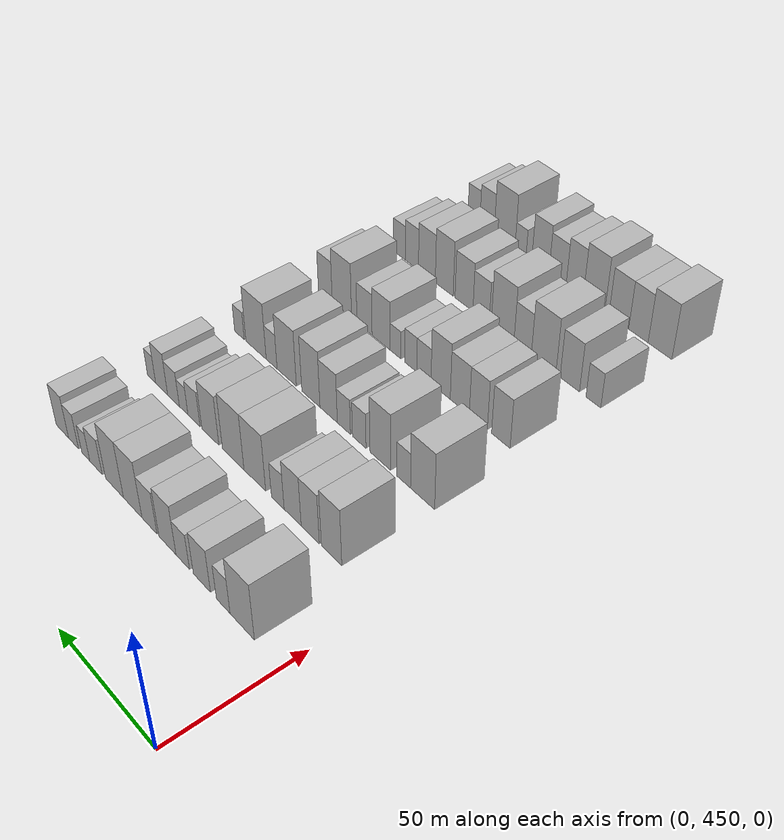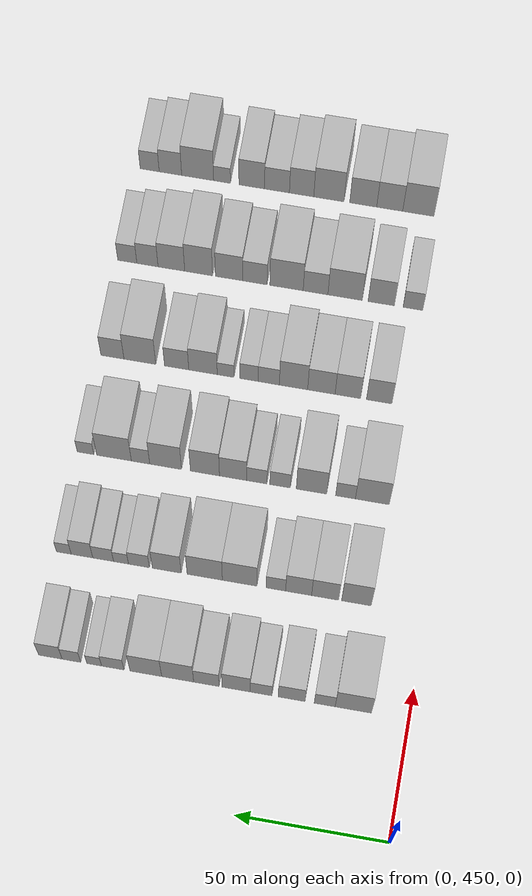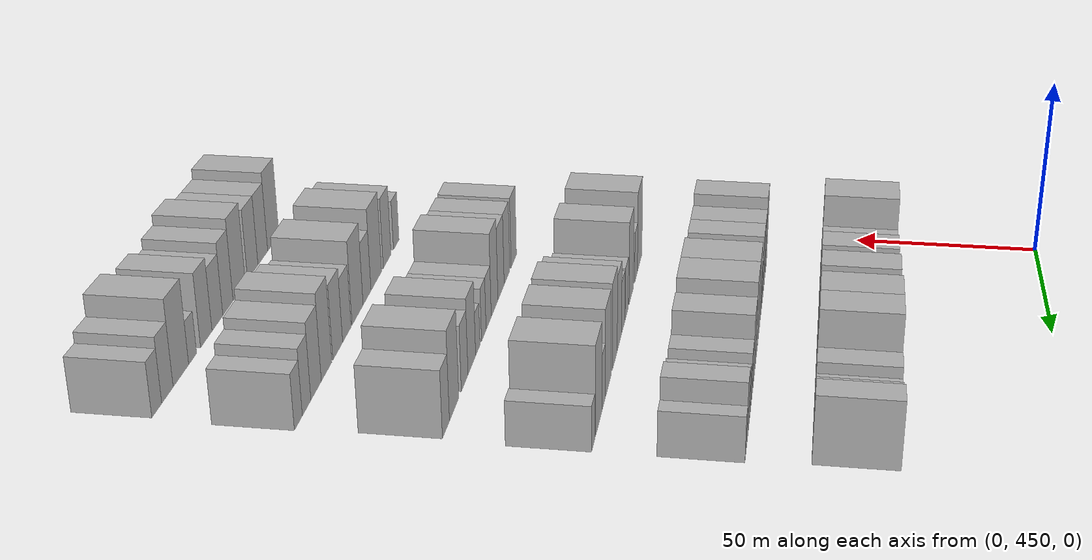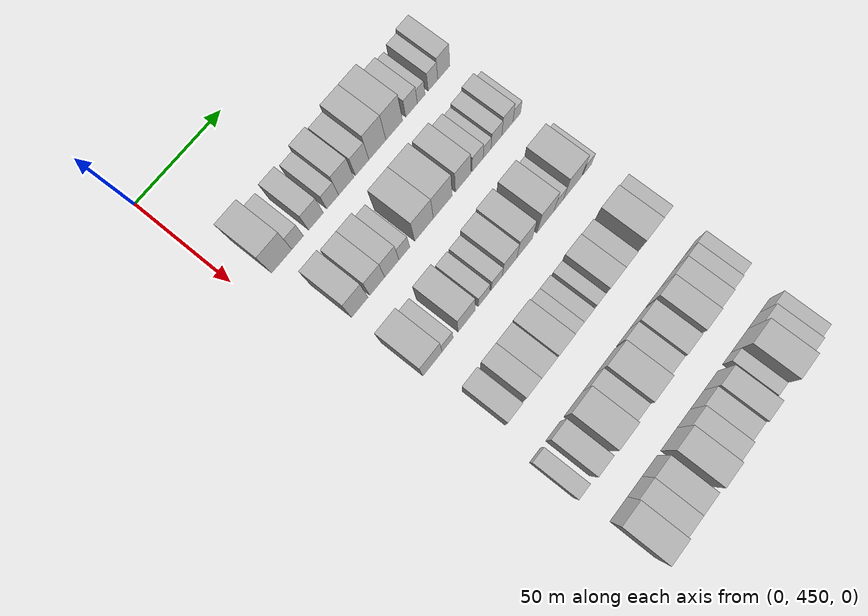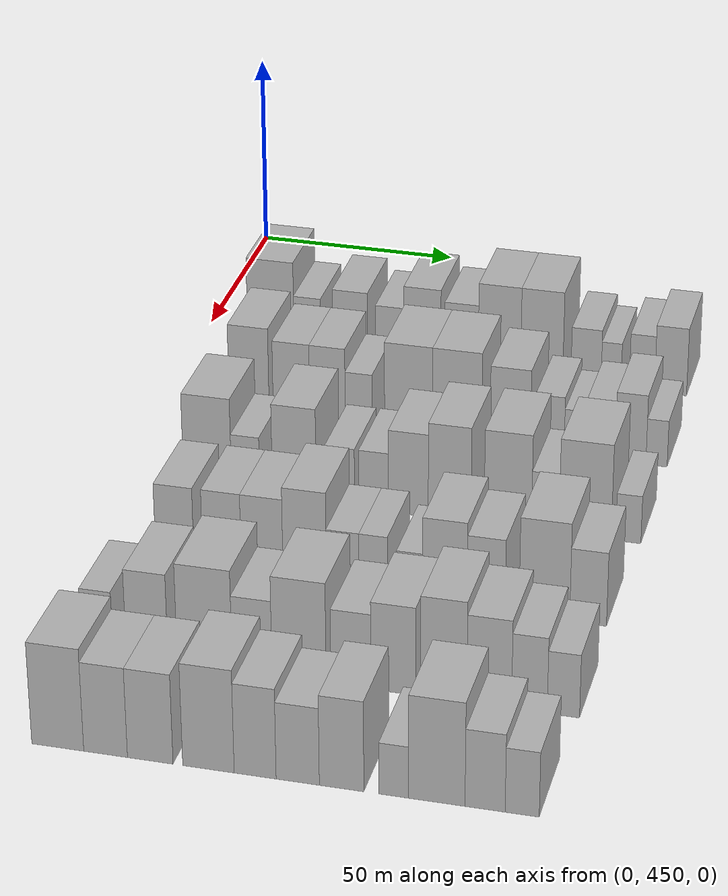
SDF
<sdf version="1.6">
 <world name="default">
  <model name="building_113">
   <static>1</static>
   <pose>50.0000 468.2517 0 0.000000 0.000000 0.000000</pose>
   <link name="link">
    <pose>0 0 12.00 0 0 0</pose>
    <collision name="collision"><geometry><box><size>20.0000 11.8288 24.0000</size></box></geometry></collision>
    <visual name="visual">
     <cast_shadows>0</cast_shadows>
     <geometry><box><size>20.0000 11.8288 24.0000</size></box></geometry>
     <material>
      <script>
       <uri>model://HANNAS_wall/materials/scripts</uri>
       <uri>model://HANNAS_wall/materials/textures</uri>
       <name>vrc/HANNAS_wall</name>
      </script>
     </material>
    </visual>
   </link>
  </model>
  <model name="building_114">
   <static>1</static>
   <pose>50.0000 477.5770 0 0.000000 0.000000 0.000000</pose>
   <link name="link">
    <pose>0 0 7.50 0 0 0</pose>
    <collision name="collision"><geometry><box><size>20.0000 6.8219 15.0000</size></box></geometry></collision>
    <visual name="visual">
     <cast_shadows>0</cast_shadows>
     <geometry><box><size>20.0000 6.8219 15.0000</size></box></geometry>
     <material>
      <script>
       <uri>model://HANNAS_wall/materials/scripts</uri>
       <uri>model://HANNAS_wall/materials/textures</uri>
       <name>vrc/HANNAS_wall</name>
      </script>
     </material>
    </visual>
   </link>
  </model>
  <model name="building_115">
   <static>1</static>
   <pose>50.0000 488.3977 0 0.000000 0.000000 0.000000</pose>
   <link name="link">
    <pose>0 0 9.00 0 0 0</pose>
    <collision name="collision"><geometry><box><size>20.0000 8.8195 18.0000</size></box></geometry></collision>
    <visual name="visual">
     <cast_shadows>0</cast_shadows>
     <geometry><box><size>20.0000 8.8195 18.0000</size></box></geometry>
     <material>
      <script>
       <uri>model://HANNAS_wall/materials/scripts</uri>
       <uri>model://HANNAS_wall/materials/textures</uri>
       <name>vrc/HANNAS_wall</name>
      </script>
     </material>
    </visual>
   </link>
  </model>
  <model name="building_116">
   <static>1</static>
   <pose>50.0000 498.3627 0 0.000000 0.000000 0.000000</pose>
   <link name="link">
    <pose>0 0 7.50 0 0 0</pose>
    <collision name="collision"><geometry><box><size>20.0000 7.1104 15.0000</size></box></geometry></collision>
    <visual name="visual">
     <cast_shadows>0</cast_shadows>
     <geometry><box><size>20.0000 7.1104 15.0000</size></box></geometry>
     <material>
      <script>
       <uri>model://HANNAS_wall/materials/scripts</uri>
       <uri>model://HANNAS_wall/materials/textures</uri>
       <name>vrc/HANNAS_wall</name>
      </script>
     </material>
    </visual>
   </link>
  </model>
  <model name="building_117">
   <static>1</static>
   <pose>50.0000 506.5333 0 0.000000 0.000000 0.000000</pose>
   <link name="link">
    <pose>0 0 10.50 0 0 0</pose>
    <collision name="collision"><geometry><box><size>20.0000 9.2308 21.0000</size></box></geometry></collision>
    <visual name="visual">
     <cast_shadows>0</cast_shadows>
     <geometry><box><size>20.0000 9.2308 21.0000</size></box></geometry>
     <material>
      <script>
       <uri>model://HANNAS_wall/materials/scripts</uri>
       <uri>model://HANNAS_wall/materials/textures</uri>
       <name>vrc/HANNAS_wall</name>
      </script>
     </material>
    </visual>
   </link>
  </model>
  <model name="building_118">
   <static>1</static>
   <pose>50.0000 516.3145 0 0.000000 0.000000 0.000000</pose>
   <link name="link">
    <pose>0 0 9.00 0 0 0</pose>
    <collision name="collision"><geometry><box><size>20.0000 8.3315 18.0000</size></box></geometry></collision>
    <visual name="visual">
     <cast_shadows>0</cast_shadows>
     <geometry><box><size>20.0000 8.3315 18.0000</size></box></geometry>
     <material>
      <script>
       <uri>model://HANNAS_wall/materials/scripts</uri>
       <uri>model://HANNAS_wall/materials/textures</uri>
       <name>vrc/HANNAS_wall</name>
      </script>
     </material>
    </visual>
   </link>
  </model>
  <model name="building_119">
   <static>1</static>
   <pose>50.0000 525.7347 0 0.000000 0.000000 0.000000</pose>
   <link name="link">
    <pose>0 0 12.00 0 0 0</pose>
    <collision name="collision"><geometry><box><size>20.0000 10.5090 24.0000</size></box></geometry></collision>
    <visual name="visual">
     <cast_shadows>0</cast_shadows>
     <geometry><box><size>20.0000 10.5090 24.0000</size></box></geometry>
     <material>
      <script>
       <uri>model://HANNAS_wall/materials/scripts</uri>
       <uri>model://HANNAS_wall/materials/textures</uri>
       <name>vrc/HANNAS_wall</name>
      </script>
     </material>
    </visual>
   </link>
  </model>
  <model name="building_120">
   <static>1</static>
   <pose>50.0000 536.1999 0 0.000000 0.000000 0.000000</pose>
   <link name="link">
    <pose>0 0 12.00 0 0 0</pose>
    <collision name="collision"><geometry><box><size>20.0000 10.4213 24.0000</size></box></geometry></collision>
    <visual name="visual">
     <cast_shadows>0</cast_shadows>
     <geometry><box><size>20.0000 10.4213 24.0000</size></box></geometry>
     <material>
      <script>
       <uri>model://HANNAS_wall/materials/scripts</uri>
       <uri>model://HANNAS_wall/materials/textures</uri>
       <name>vrc/HANNAS_wall</name>
      </script>
     </material>
    </visual>
   </link>
  </model>
  <model name="building_121">
   <static>1</static>
   <pose>50.0000 547.1112 0 0.000000 0.000000 0.000000</pose>
   <link name="link">
    <pose>0 0 7.50 0 0 0</pose>
    <collision name="collision"><geometry><box><size>20.0000 7.4013 15.0000</size></box></geometry></collision>
    <visual name="visual">
     <cast_shadows>0</cast_shadows>
     <geometry><box><size>20.0000 7.4013 15.0000</size></box></geometry>
     <material>
      <script>
       <uri>model://HANNAS_wall/materials/scripts</uri>
       <uri>model://HANNAS_wall/materials/textures</uri>
       <name>vrc/HANNAS_wall</name>
      </script>
     </material>
    </visual>
   </link>
  </model>
  <model name="building_122">
   <static>1</static>
   <pose>50.0000 553.2495 0 0.000000 0.000000 0.000000</pose>
   <link name="link">
    <pose>0 0 6.00 0 0 0</pose>
    <collision name="collision"><geometry><box><size>20.0000 4.8753 12.0000</size></box></geometry></collision>
    <visual name="visual">
     <cast_shadows>0</cast_shadows>
     <geometry><box><size>20.0000 4.8753 12.0000</size></box></geometry>
     <material>
      <script>
       <uri>model://HANNAS_wall/materials/scripts</uri>
       <uri>model://HANNAS_wall/materials/textures</uri>
       <name>vrc/HANNAS_wall</name>
      </script>
     </material>
    </visual>
   </link>
  </model>
  <model name="building_123">
   <static>1</static>
   <pose>50.0000 560.7667 0 0.000000 0.000000 0.000000</pose>
   <link name="link">
    <pose>0 0 7.50 0 0 0</pose>
    <collision name="collision"><geometry><box><size>20.0000 6.1592 15.0000</size></box></geometry></collision>
    <visual name="visual">
     <cast_shadows>0</cast_shadows>
     <geometry><box><size>20.0000 6.1592 15.0000</size></box></geometry>
     <material>
      <script>
       <uri>model://HANNAS_wall/materials/scripts</uri>
       <uri>model://HANNAS_wall/materials/textures</uri>
       <name>vrc/HANNAS_wall</name>
      </script>
     </material>
    </visual>
   </link>
  </model>
  <model name="building_124">
   <static>1</static>
   <pose>50.0000 567.7388 0 0.000000 0.000000 0.000000</pose>
   <link name="link">
    <pose>0 0 9.00 0 0 0</pose>
    <collision name="collision"><geometry><box><size>20.0000 7.7850 18.0000</size></box></geometry></collision>
    <visual name="visual">
     <cast_shadows>0</cast_shadows>
     <geometry><box><size>20.0000 7.7850 18.0000</size></box></geometry>
     <material>
      <script>
       <uri>model://HANNAS_wall/materials/scripts</uri>
       <uri>model://HANNAS_wall/materials/textures</uri>
       <name>vrc/HANNAS_wall</name>
      </script>
     </material>
    </visual>
   </link>
  </model>
  <model name="building_244">
   <static>1</static>
   <pose>85.0000 472.8939 0 0.000000 0.000000 0.000000</pose>
   <link name="link">
    <pose>0 0 12.00 0 0 0</pose>
    <collision name="collision"><geometry><box><size>20.0000 9.7969 24.0000</size></box></geometry></collision>
    <visual name="visual">
     <cast_shadows>0</cast_shadows>
     <geometry><box><size>20.0000 9.7969 24.0000</size></box></geometry>
     <material>
      <script>
       <uri>model://HANNAS_wall/materials/scripts</uri>
       <uri>model://HANNAS_wall/materials/textures</uri>
       <name>vrc/HANNAS_wall</name>
      </script>
     </material>
    </visual>
   </link>
  </model>
  <model name="building_245">
   <static>1</static>
   <pose>85.0000 483.2592 0 0.000000 0.000000 0.000000</pose>
   <link name="link">
    <pose>0 0 10.50 0 0 0</pose>
    <collision name="collision"><geometry><box><size>20.0000 8.9336 21.0000</size></box></geometry></collision>
    <visual name="visual">
     <cast_shadows>0</cast_shadows>
     <geometry><box><size>20.0000 8.9336 21.0000</size></box></geometry>
     <material>
      <script>
       <uri>model://HANNAS_wall/materials/scripts</uri>
       <uri>model://HANNAS_wall/materials/textures</uri>
       <name>vrc/HANNAS_wall</name>
      </script>
     </material>
    </visual>
   </link>
  </model>
  <model name="building_246">
   <static>1</static>
   <pose>85.0000 492.0335 0 0.000000 0.000000 0.000000</pose>
   <link name="link">
    <pose>0 0 10.50 0 0 0</pose>
    <collision name="collision"><geometry><box><size>20.0000 8.6151 21.0000</size></box></geometry></collision>
    <visual name="visual">
     <cast_shadows>0</cast_shadows>
     <geometry><box><size>20.0000 8.6151 21.0000</size></box></geometry>
     <material>
      <script>
       <uri>model://HANNAS_wall/materials/scripts</uri>
       <uri>model://HANNAS_wall/materials/textures</uri>
       <name>vrc/HANNAS_wall</name>
      </script>
     </material>
    </visual>
   </link>
  </model>
  <model name="building_247">
   <static>1</static>
   <pose>85.0000 499.6027 0 0.000000 0.000000 0.000000</pose>
   <link name="link">
    <pose>0 0 7.50 0 0 0</pose>
    <collision name="collision"><geometry><box><size>20.0000 6.5233 15.0000</size></box></geometry></collision>
    <visual name="visual">
     <cast_shadows>0</cast_shadows>
     <geometry><box><size>20.0000 6.5233 15.0000</size></box></geometry>
     <material>
      <script>
       <uri>model://HANNAS_wall/materials/scripts</uri>
       <uri>model://HANNAS_wall/materials/textures</uri>
       <name>vrc/HANNAS_wall</name>
      </script>
     </material>
    </visual>
   </link>
  </model>
  <model name="building_248">
   <static>1</static>
   <pose>85.0000 511.6254 0 0.000000 0.000000 0.000000</pose>
   <link name="link">
    <pose>0 0 12.00 0 0 0</pose>
    <collision name="collision"><geometry><box><size>20.0000 11.5221 24.0000</size></box></geometry></collision>
    <visual name="visual">
     <cast_shadows>0</cast_shadows>
     <geometry><box><size>20.0000 11.5221 24.0000</size></box></geometry>
     <material>
      <script>
       <uri>model://HANNAS_wall/materials/scripts</uri>
       <uri>model://HANNAS_wall/materials/textures</uri>
       <name>vrc/HANNAS_wall</name>
      </script>
     </material>
    </visual>
   </link>
  </model>
  <model name="building_249">
   <static>1</static>
   <pose>85.0000 523.2528 0 0.000000 0.000000 0.000000</pose>
   <link name="link">
    <pose>0 0 12.00 0 0 0</pose>
    <collision name="collision"><geometry><box><size>20.0000 11.7327 24.0000</size></box></geometry></collision>
    <visual name="visual">
     <cast_shadows>0</cast_shadows>
     <geometry><box><size>20.0000 11.7327 24.0000</size></box></geometry>
     <material>
      <script>
       <uri>model://HANNAS_wall/materials/scripts</uri>
       <uri>model://HANNAS_wall/materials/textures</uri>
       <name>vrc/HANNAS_wall</name>
      </script>
     </material>
    </visual>
   </link>
  </model>
  <model name="building_250">
   <static>1</static>
   <pose>85.0000 535.9151 0 0.000000 0.000000 0.000000</pose>
   <link name="link">
    <pose>0 0 10.50 0 0 0</pose>
    <collision name="collision"><geometry><box><size>20.0000 9.5918 21.0000</size></box></geometry></collision>
    <visual name="visual">
     <cast_shadows>0</cast_shadows>
     <geometry><box><size>20.0000 9.5918 21.0000</size></box></geometry>
     <material>
      <script>
       <uri>model://HANNAS_wall/materials/scripts</uri>
       <uri>model://HANNAS_wall/materials/textures</uri>
       <name>vrc/HANNAS_wall</name>
      </script>
     </material>
    </visual>
   </link>
  </model>
  <model name="building_251">
   <static>1</static>
   <pose>85.0000 545.2066 0 0.000000 0.000000 0.000000</pose>
   <link name="link">
    <pose>0 0 7.50 0 0 0</pose>
    <collision name="collision"><geometry><box><size>20.0000 6.9914 15.0000</size></box></geometry></collision>
    <visual name="visual">
     <cast_shadows>0</cast_shadows>
     <geometry><box><size>20.0000 6.9914 15.0000</size></box></geometry>
     <material>
      <script>
       <uri>model://HANNAS_wall/materials/scripts</uri>
       <uri>model://HANNAS_wall/materials/textures</uri>
       <name>vrc/HANNAS_wall</name>
      </script>
     </material>
    </visual>
   </link>
  </model>
  <model name="building_252">
   <static>1</static>
   <pose>85.0000 551.2076 0 0.000000 0.000000 0.000000</pose>
   <link name="link">
    <pose>0 0 6.00 0 0 0</pose>
    <collision name="collision"><geometry><box><size>20.0000 5.0105 12.0000</size></box></geometry></collision>
    <visual name="visual">
     <cast_shadows>0</cast_shadows>
     <geometry><box><size>20.0000 5.0105 12.0000</size></box></geometry>
     <material>
      <script>
       <uri>model://HANNAS_wall/materials/scripts</uri>
       <uri>model://HANNAS_wall/materials/textures</uri>
       <name>vrc/HANNAS_wall</name>
      </script>
     </material>
    </visual>
   </link>
  </model>
  <model name="building_253">
   <static>1</static>
   <pose>85.0000 557.1914 0 0.000000 0.000000 0.000000</pose>
   <link name="link">
    <pose>0 0 7.50 0 0 0</pose>
    <collision name="collision"><geometry><box><size>20.0000 6.9571 15.0000</size></box></geometry></collision>
    <visual name="visual">
     <cast_shadows>0</cast_shadows>
     <geometry><box><size>20.0000 6.9571 15.0000</size></box></geometry>
     <material>
      <script>
       <uri>model://HANNAS_wall/materials/scripts</uri>
       <uri>model://HANNAS_wall/materials/textures</uri>
       <name>vrc/HANNAS_wall</name>
      </script>
     </material>
    </visual>
   </link>
  </model>
  <model name="building_254">
   <static>1</static>
   <pose>85.0000 564.2882 0 0.000000 0.000000 0.000000</pose>
   <link name="link">
    <pose>0 0 9.00 0 0 0</pose>
    <collision name="collision"><geometry><box><size>20.0000 7.2365 18.0000</size></box></geometry></collision>
    <visual name="visual">
     <cast_shadows>0</cast_shadows>
     <geometry><box><size>20.0000 7.2365 18.0000</size></box></geometry>
     <material>
      <script>
       <uri>model://HANNAS_wall/materials/scripts</uri>
       <uri>model://HANNAS_wall/materials/textures</uri>
       <name>vrc/HANNAS_wall</name>
      </script>
     </material>
    </visual>
   </link>
  </model>
  <model name="building_255">
   <static>1</static>
   <pose>85.0000 570.3842 0 0.000000 0.000000 0.000000</pose>
   <link name="link">
    <pose>0 0 6.00 0 0 0</pose>
    <collision name="collision"><geometry><box><size>20.0000 4.9554 12.0000</size></box></geometry></collision>
    <visual name="visual">
     <cast_shadows>0</cast_shadows>
     <geometry><box><size>20.0000 4.9554 12.0000</size></box></geometry>
     <material>
      <script>
       <uri>model://HANNAS_wall/materials/scripts</uri>
       <uri>model://HANNAS_wall/materials/textures</uri>
       <name>vrc/HANNAS_wall</name>
      </script>
     </material>
    </visual>
   </link>
  </model>
  <model name="building_367">
   <static>1</static>
   <pose>120.0000 473.2083 0 0.000000 0.000000 0.000000</pose>
   <link name="link">
    <pose>0 0 12.00 0 0 0</pose>
    <collision name="collision"><geometry><box><size>20.0000 11.3515 24.0000</size></box></geometry></collision>
    <visual name="visual">
     <cast_shadows>0</cast_shadows>
     <geometry><box><size>20.0000 11.3515 24.0000</size></box></geometry>
     <material>
      <script>
       <uri>model://HANNAS_wall/materials/scripts</uri>
       <uri>model://HANNAS_wall/materials/textures</uri>
       <name>vrc/HANNAS_wall</name>
      </script>
     </material>
    </visual>
   </link>
  </model>
  <model name="building_368">
   <static>1</static>
   <pose>120.0000 482.2010 0 0.000000 0.000000 0.000000</pose>
   <link name="link">
    <pose>0 0 7.50 0 0 0</pose>
    <collision name="collision"><geometry><box><size>20.0000 6.6339 15.0000</size></box></geometry></collision>
    <visual name="visual">
     <cast_shadows>0</cast_shadows>
     <geometry><box><size>20.0000 6.6339 15.0000</size></box></geometry>
     <material>
      <script>
       <uri>model://HANNAS_wall/materials/scripts</uri>
       <uri>model://HANNAS_wall/materials/textures</uri>
       <name>vrc/HANNAS_wall</name>
      </script>
     </material>
    </visual>
   </link>
  </model>
  <model name="building_369">
   <static>1</static>
   <pose>120.0000 493.6407 0 0.000000 0.000000 0.000000</pose>
   <link name="link">
    <pose>0 0 12.00 0 0 0</pose>
    <collision name="collision"><geometry><box><size>20.0000 10.2455 24.0000</size></box></geometry></collision>
    <visual name="visual">
     <cast_shadows>0</cast_shadows>
     <geometry><box><size>20.0000 10.2455 24.0000</size></box></geometry>
     <material>
      <script>
       <uri>model://HANNAS_wall/materials/scripts</uri>
       <uri>model://HANNAS_wall/materials/textures</uri>
       <name>vrc/HANNAS_wall</name>
      </script>
     </material>
    </visual>
   </link>
  </model>
  <model name="building_370">
   <static>1</static>
   <pose>120.0000 504.2190 0 0.000000 0.000000 0.000000</pose>
   <link name="link">
    <pose>0 0 7.50 0 0 0</pose>
    <collision name="collision"><geometry><box><size>20.0000 6.9110 15.0000</size></box></geometry></collision>
    <visual name="visual">
     <cast_shadows>0</cast_shadows>
     <geometry><box><size>20.0000 6.9110 15.0000</size></box></geometry>
     <material>
      <script>
       <uri>model://HANNAS_wall/materials/scripts</uri>
       <uri>model://HANNAS_wall/materials/textures</uri>
       <name>vrc/HANNAS_wall</name>
      </script>
     </material>
    </visual>
   </link>
  </model>
  <model name="building_371">
   <static>1</static>
   <pose>120.0000 512.0822 0 0.000000 0.000000 0.000000</pose>
   <link name="link">
    <pose>0 0 7.50 0 0 0</pose>
    <collision name="collision"><geometry><box><size>20.0000 6.8153 15.0000</size></box></geometry></collision>
    <visual name="visual">
     <cast_shadows>0</cast_shadows>
     <geometry><box><size>20.0000 6.8153 15.0000</size></box></geometry>
     <material>
      <script>
       <uri>model://HANNAS_wall/materials/scripts</uri>
       <uri>model://HANNAS_wall/materials/textures</uri>
       <name>vrc/HANNAS_wall</name>
      </script>
     </material>
    </visual>
   </link>
  </model>
  <model name="building_372">
   <static>1</static>
   <pose>120.0000 520.0840 0 0.000000 0.000000 0.000000</pose>
   <link name="link">
    <pose>0 0 10.50 0 0 0</pose>
    <collision name="collision"><geometry><box><size>20.0000 9.1883 21.0000</size></box></geometry></collision>
    <visual name="visual">
     <cast_shadows>0</cast_shadows>
     <geometry><box><size>20.0000 9.1883 21.0000</size></box></geometry>
     <material>
      <script>
       <uri>model://HANNAS_wall/materials/scripts</uri>
       <uri>model://HANNAS_wall/materials/textures</uri>
       <name>vrc/HANNAS_wall</name>
      </script>
     </material>
    </visual>
   </link>
  </model>
  <model name="building_373">
   <static>1</static>
   <pose>120.0000 529.5847 0 0.000000 0.000000 0.000000</pose>
   <link name="link">
    <pose>0 0 12.00 0 0 0</pose>
    <collision name="collision"><geometry><box><size>20.0000 9.8130 24.0000</size></box></geometry></collision>
    <visual name="visual">
     <cast_shadows>0</cast_shadows>
     <geometry><box><size>20.0000 9.8130 24.0000</size></box></geometry>
     <material>
      <script>
       <uri>model://HANNAS_wall/materials/scripts</uri>
       <uri>model://HANNAS_wall/materials/textures</uri>
       <name>vrc/HANNAS_wall</name>
      </script>
     </material>
    </visual>
   </link>
  </model>
  <model name="building_374">
   <static>1</static>
   <pose>120.0000 542.8760 0 0.000000 0.000000 0.000000</pose>
   <link name="link">
    <pose>0 0 12.00 0 0 0</pose>
    <collision name="collision"><geometry><box><size>20.0000 10.7697 24.0000</size></box></geometry></collision>
    <visual name="visual">
     <cast_shadows>0</cast_shadows>
     <geometry><box><size>20.0000 10.7697 24.0000</size></box></geometry>
     <material>
      <script>
       <uri>model://HANNAS_wall/materials/scripts</uri>
       <uri>model://HANNAS_wall/materials/textures</uri>
       <name>vrc/HANNAS_wall</name>
      </script>
     </material>
    </visual>
   </link>
  </model>
  <model name="building_375">
   <static>1</static>
   <pose>120.0000 551.3742 0 0.000000 0.000000 0.000000</pose>
   <link name="link">
    <pose>0 0 7.50 0 0 0</pose>
    <collision name="collision"><geometry><box><size>20.0000 6.2267 15.0000</size></box></geometry></collision>
    <visual name="visual">
     <cast_shadows>0</cast_shadows>
     <geometry><box><size>20.0000 6.2267 15.0000</size></box></geometry>
     <material>
      <script>
       <uri>model://HANNAS_wall/materials/scripts</uri>
       <uri>model://HANNAS_wall/materials/textures</uri>
       <name>vrc/HANNAS_wall</name>
      </script>
     </material>
    </visual>
   </link>
  </model>
  <model name="building_376">
   <static>1</static>
   <pose>120.0000 560.3779 0 0.000000 0.000000 0.000000</pose>
   <link name="link">
    <pose>0 0 12.00 0 0 0</pose>
    <collision name="collision"><geometry><box><size>20.0000 11.7807 24.0000</size></box></geometry></collision>
    <visual name="visual">
     <cast_shadows>0</cast_shadows>
     <geometry><box><size>20.0000 11.7807 24.0000</size></box></geometry>
     <material>
      <script>
       <uri>model://HANNAS_wall/materials/scripts</uri>
       <uri>model://HANNAS_wall/materials/textures</uri>
       <name>vrc/HANNAS_wall</name>
      </script>
     </material>
    </visual>
   </link>
  </model>
  <model name="building_377">
   <static>1</static>
   <pose>120.0000 570.1002 0 0.000000 0.000000 0.000000</pose>
   <link name="link">
    <pose>0 0 6.00 0 0 0</pose>
    <collision name="collision"><geometry><box><size>20.0000 5.6638 12.0000</size></box></geometry></collision>
    <visual name="visual">
     <cast_shadows>0</cast_shadows>
     <geometry><box><size>20.0000 5.6638 12.0000</size></box></geometry>
     <material>
      <script>
       <uri>model://HANNAS_wall/materials/scripts</uri>
       <uri>model://HANNAS_wall/materials/textures</uri>
       <name>vrc/HANNAS_wall</name>
      </script>
     </material>
    </visual>
   </link>
  </model>
  <model name="building_492">
   <static>1</static>
   <pose>155.0000 476.4564 0 0.000000 0.000000 0.000000</pose>
   <link name="link">
    <pose>0 0 10.50 0 0 0</pose>
    <collision name="collision"><geometry><box><size>20.0000 8.6724 21.0000</size></box></geometry></collision>
    <visual name="visual">
     <cast_shadows>0</cast_shadows>
     <geometry><box><size>20.0000 8.6724 21.0000</size></box></geometry>
     <material>
      <script>
       <uri>model://HANNAS_wall/materials/scripts</uri>
       <uri>model://HANNAS_wall/materials/textures</uri>
       <name>vrc/HANNAS_wall</name>
      </script>
     </material>
    </visual>
   </link>
  </model>
  <model name="building_493">
   <static>1</static>
   <pose>155.0000 487.1316 0 0.000000 0.000000 0.000000</pose>
   <link name="link">
    <pose>0 0 10.50 0 0 0</pose>
    <collision name="collision"><geometry><box><size>20.0000 8.6781 21.0000</size></box></geometry></collision>
    <visual name="visual">
     <cast_shadows>0</cast_shadows>
     <geometry><box><size>20.0000 8.6781 21.0000</size></box></geometry>
     <material>
      <script>
       <uri>model://HANNAS_wall/materials/scripts</uri>
       <uri>model://HANNAS_wall/materials/textures</uri>
       <name>vrc/HANNAS_wall</name>
      </script>
     </material>
    </visual>
   </link>
  </model>
  <model name="building_494">
   <static>1</static>
   <pose>155.0000 496.1494 0 0.000000 0.000000 0.000000</pose>
   <link name="link">
    <pose>0 0 10.50 0 0 0</pose>
    <collision name="collision"><geometry><box><size>20.0000 9.3574 21.0000</size></box></geometry></collision>
    <visual name="visual">
     <cast_shadows>0</cast_shadows>
     <geometry><box><size>20.0000 9.3574 21.0000</size></box></geometry>
     <material>
      <script>
       <uri>model://HANNAS_wall/materials/scripts</uri>
       <uri>model://HANNAS_wall/materials/textures</uri>
       <name>vrc/HANNAS_wall</name>
      </script>
     </material>
    </visual>
   </link>
  </model>
  <model name="building_495">
   <static>1</static>
   <pose>155.0000 505.6668 0 0.000000 0.000000 0.000000</pose>
   <link name="link">
    <pose>0 0 12.00 0 0 0</pose>
    <collision name="collision"><geometry><box><size>20.0000 9.6774 24.0000</size></box></geometry></collision>
    <visual name="visual">
     <cast_shadows>0</cast_shadows>
     <geometry><box><size>20.0000 9.6774 24.0000</size></box></geometry>
     <material>
      <script>
       <uri>model://HANNAS_wall/materials/scripts</uri>
       <uri>model://HANNAS_wall/materials/textures</uri>
       <name>vrc/HANNAS_wall</name>
      </script>
     </material>
    </visual>
   </link>
  </model>
  <model name="building_496">
   <static>1</static>
   <pose>155.0000 514.1166 0 0.000000 0.000000 0.000000</pose>
   <link name="link">
    <pose>0 0 7.50 0 0 0</pose>
    <collision name="collision"><geometry><box><size>20.0000 7.2220 15.0000</size></box></geometry></collision>
    <visual name="visual">
     <cast_shadows>0</cast_shadows>
     <geometry><box><size>20.0000 7.2220 15.0000</size></box></geometry>
     <material>
      <script>
       <uri>model://HANNAS_wall/materials/scripts</uri>
       <uri>model://HANNAS_wall/materials/textures</uri>
       <name>vrc/HANNAS_wall</name>
      </script>
     </material>
    </visual>
   </link>
  </model>
  <model name="building_497">
   <static>1</static>
   <pose>155.0000 520.8746 0 0.000000 0.000000 0.000000</pose>
   <link name="link">
    <pose>0 0 7.50 0 0 0</pose>
    <collision name="collision"><geometry><box><size>20.0000 6.2940 15.0000</size></box></geometry></collision>
    <visual name="visual">
     <cast_shadows>0</cast_shadows>
     <geometry><box><size>20.0000 6.2940 15.0000</size></box></geometry>
     <material>
      <script>
       <uri>model://HANNAS_wall/materials/scripts</uri>
       <uri>model://HANNAS_wall/materials/textures</uri>
       <name>vrc/HANNAS_wall</name>
      </script>
     </material>
    </visual>
   </link>
  </model>
  <model name="building_498">
   <static>1</static>
   <pose>155.0000 528.8949 0 0.000000 0.000000 0.000000</pose>
   <link name="link">
    <pose>0 0 6.00 0 0 0</pose>
    <collision name="collision"><geometry><box><size>20.0000 5.7466 12.0000</size></box></geometry></collision>
    <visual name="visual">
     <cast_shadows>0</cast_shadows>
     <geometry><box><size>20.0000 5.7466 12.0000</size></box></geometry>
     <material>
      <script>
       <uri>model://HANNAS_wall/materials/scripts</uri>
       <uri>model://HANNAS_wall/materials/textures</uri>
       <name>vrc/HANNAS_wall</name>
      </script>
     </material>
    </visual>
   </link>
  </model>
  <model name="building_499">
   <static>1</static>
   <pose>155.0000 536.6501 0 0.000000 0.000000 0.000000</pose>
   <link name="link">
    <pose>0 0 10.50 0 0 0</pose>
    <collision name="collision"><geometry><box><size>20.0000 9.7638 21.0000</size></box></geometry></collision>
    <visual name="visual">
     <cast_shadows>0</cast_shadows>
     <geometry><box><size>20.0000 9.7638 21.0000</size></box></geometry>
     <material>
      <script>
       <uri>model://HANNAS_wall/materials/scripts</uri>
       <uri>model://HANNAS_wall/materials/textures</uri>
       <name>vrc/HANNAS_wall</name>
      </script>
     </material>
    </visual>
   </link>
  </model>
  <model name="building_500">
   <static>1</static>
   <pose>155.0000 545.6896 0 0.000000 0.000000 0.000000</pose>
   <link name="link">
    <pose>0 0 9.00 0 0 0</pose>
    <collision name="collision"><geometry><box><size>20.0000 8.3153 18.0000</size></box></geometry></collision>
    <visual name="visual">
     <cast_shadows>0</cast_shadows>
     <geometry><box><size>20.0000 8.3153 18.0000</size></box></geometry>
     <material>
      <script>
       <uri>model://HANNAS_wall/materials/scripts</uri>
       <uri>model://HANNAS_wall/materials/textures</uri>
       <name>vrc/HANNAS_wall</name>
      </script>
     </material>
    </visual>
   </link>
  </model>
  <model name="building_501">
   <static>1</static>
   <pose>155.0000 558.3270 0 0.000000 0.000000 0.000000</pose>
   <link name="link">
    <pose>0 0 12.00 0 0 0</pose>
    <collision name="collision"><geometry><box><size>20.0000 10.9594 24.0000</size></box></geometry></collision>
    <visual name="visual">
     <cast_shadows>0</cast_shadows>
     <geometry><box><size>20.0000 10.9594 24.0000</size></box></geometry>
     <material>
      <script>
       <uri>model://HANNAS_wall/materials/scripts</uri>
       <uri>model://HANNAS_wall/materials/textures</uri>
       <name>vrc/HANNAS_wall</name>
      </script>
     </material>
    </visual>
   </link>
  </model>
  <model name="building_502">
   <static>1</static>
   <pose>155.0000 567.7808 0 0.000000 0.000000 0.000000</pose>
   <link name="link">
    <pose>0 0 9.00 0 0 0</pose>
    <collision name="collision"><geometry><box><size>20.0000 7.9482 18.0000</size></box></geometry></collision>
    <visual name="visual">
     <cast_shadows>0</cast_shadows>
     <geometry><box><size>20.0000 7.9482 18.0000</size></box></geometry>
     <material>
      <script>
       <uri>model://HANNAS_wall/materials/scripts</uri>
       <uri>model://HANNAS_wall/materials/textures</uri>
       <name>vrc/HANNAS_wall</name>
      </script>
     </material>
    </visual>
   </link>
  </model>
  <model name="building_617">
   <static>1</static>
   <pose>190.0000 470.3779 0 0.000000 0.000000 0.000000</pose>
   <link name="link">
    <pose>0 0 7.50 0 0 0</pose>
    <collision name="collision"><geometry><box><size>20.0000 6.7582 15.0000</size></box></geometry></collision>
    <visual name="visual">
     <cast_shadows>0</cast_shadows>
     <geometry><box><size>20.0000 6.7582 15.0000</size></box></geometry>
     <material>
      <script>
       <uri>model://HANNAS_wall/materials/scripts</uri>
       <uri>model://HANNAS_wall/materials/textures</uri>
       <name>vrc/HANNAS_wall</name>
      </script>
     </material>
    </visual>
   </link>
  </model>
  <model name="building_618">
   <static>1</static>
   <pose>190.0000 481.3050 0 0.000000 0.000000 0.000000</pose>
   <link name="link">
    <pose>0 0 10.50 0 0 0</pose>
    <collision name="collision"><geometry><box><size>20.0000 9.0960 21.0000</size></box></geometry></collision>
    <visual name="visual">
     <cast_shadows>0</cast_shadows>
     <geometry><box><size>20.0000 9.0960 21.0000</size></box></geometry>
     <material>
      <script>
       <uri>model://HANNAS_wall/materials/scripts</uri>
       <uri>model://HANNAS_wall/materials/textures</uri>
       <name>vrc/HANNAS_wall</name>
      </script>
     </material>
    </visual>
   </link>
  </model>
  <model name="building_619">
   <static>1</static>
   <pose>190.0000 493.7862 0 0.000000 0.000000 0.000000</pose>
   <link name="link">
    <pose>0 0 12.00 0 0 0</pose>
    <collision name="collision"><geometry><box><size>20.0000 11.8664 24.0000</size></box></geometry></collision>
    <visual name="visual">
     <cast_shadows>0</cast_shadows>
     <geometry><box><size>20.0000 11.8664 24.0000</size></box></geometry>
     <material>
      <script>
       <uri>model://HANNAS_wall/materials/scripts</uri>
       <uri>model://HANNAS_wall/materials/textures</uri>
       <name>vrc/HANNAS_wall</name>
      </script>
     </material>
    </visual>
   </link>
  </model>
  <model name="building_620">
   <static>1</static>
   <pose>190.0000 503.9983 0 0.000000 0.000000 0.000000</pose>
   <link name="link">
    <pose>0 0 9.00 0 0 0</pose>
    <collision name="collision"><geometry><box><size>20.0000 8.5578 18.0000</size></box></geometry></collision>
    <visual name="visual">
     <cast_shadows>0</cast_shadows>
     <geometry><box><size>20.0000 8.5578 18.0000</size></box></geometry>
     <material>
      <script>
       <uri>model://HANNAS_wall/materials/scripts</uri>
       <uri>model://HANNAS_wall/materials/textures</uri>
       <name>vrc/HANNAS_wall</name>
      </script>
     </material>
    </visual>
   </link>
  </model>
  <model name="building_621">
   <static>1</static>
   <pose>190.0000 514.0446 0 0.000000 0.000000 0.000000</pose>
   <link name="link">
    <pose>0 0 12.00 0 0 0</pose>
    <collision name="collision"><geometry><box><size>20.0000 11.5349 24.0000</size></box></geometry></collision>
    <visual name="visual">
     <cast_shadows>0</cast_shadows>
     <geometry><box><size>20.0000 11.5349 24.0000</size></box></geometry>
     <material>
      <script>
       <uri>model://HANNAS_wall/materials/scripts</uri>
       <uri>model://HANNAS_wall/materials/textures</uri>
       <name>vrc/HANNAS_wall</name>
      </script>
     </material>
    </visual>
   </link>
  </model>
  <model name="building_622">
   <static>1</static>
   <pose>190.0000 525.0414 0 0.000000 0.000000 0.000000</pose>
   <link name="link">
    <pose>0 0 9.00 0 0 0</pose>
    <collision name="collision"><geometry><box><size>20.0000 8.4587 18.0000</size></box></geometry></collision>
    <visual name="visual">
     <cast_shadows>0</cast_shadows>
     <geometry><box><size>20.0000 8.4587 18.0000</size></box></geometry>
     <material>
      <script>
       <uri>model://HANNAS_wall/materials/scripts</uri>
       <uri>model://HANNAS_wall/materials/textures</uri>
       <name>vrc/HANNAS_wall</name>
      </script>
     </material>
    </visual>
   </link>
  </model>
  <model name="building_623">
   <static>1</static>
   <pose>190.0000 534.0036 0 0.000000 0.000000 0.000000</pose>
   <link name="link">
    <pose>0 0 10.50 0 0 0</pose>
    <collision name="collision"><geometry><box><size>20.0000 9.4656 21.0000</size></box></geometry></collision>
    <visual name="visual">
     <cast_shadows>0</cast_shadows>
     <geometry><box><size>20.0000 9.4656 21.0000</size></box></geometry>
     <material>
      <script>
       <uri>model://HANNAS_wall/materials/scripts</uri>
       <uri>model://HANNAS_wall/materials/textures</uri>
       <name>vrc/HANNAS_wall</name>
      </script>
     </material>
    </visual>
   </link>
  </model>
  <model name="building_624">
   <static>1</static>
   <pose>190.0000 544.5774 0 0.000000 0.000000 0.000000</pose>
   <link name="link">
    <pose>0 0 12.00 0 0 0</pose>
    <collision name="collision"><geometry><box><size>20.0000 9.6820 24.0000</size></box></geometry></collision>
    <visual name="visual">
     <cast_shadows>0</cast_shadows>
     <geometry><box><size>20.0000 9.6820 24.0000</size></box></geometry>
     <material>
      <script>
       <uri>model://HANNAS_wall/materials/scripts</uri>
       <uri>model://HANNAS_wall/materials/textures</uri>
       <name>vrc/HANNAS_wall</name>
      </script>
     </material>
    </visual>
   </link>
  </model>
  <model name="building_625">
   <static>1</static>
   <pose>190.0000 554.0684 0 0.000000 0.000000 0.000000</pose>
   <link name="link">
    <pose>0 0 10.50 0 0 0</pose>
    <collision name="collision"><geometry><box><size>20.0000 9.3001 21.0000</size></box></geometry></collision>
    <visual name="visual">
     <cast_shadows>0</cast_shadows>
     <geometry><box><size>20.0000 9.3001 21.0000</size></box></geometry>
     <material>
      <script>
       <uri>model://HANNAS_wall/materials/scripts</uri>
       <uri>model://HANNAS_wall/materials/textures</uri>
       <name>vrc/HANNAS_wall</name>
      </script>
     </material>
    </visual>
   </link>
  </model>
  <model name="building_626">
   <static>1</static>
   <pose>190.0000 562.4048 0 0.000000 0.000000 0.000000</pose>
   <link name="link">
    <pose>0 0 9.00 0 0 0</pose>
    <collision name="collision"><geometry><box><size>20.0000 7.3726 18.0000</size></box></geometry></collision>
    <visual name="visual">
     <cast_shadows>0</cast_shadows>
     <geometry><box><size>20.0000 7.3726 18.0000</size></box></geometry>
     <material>
      <script>
       <uri>model://HANNAS_wall/materials/scripts</uri>
       <uri>model://HANNAS_wall/materials/textures</uri>
       <name>vrc/HANNAS_wall</name>
      </script>
     </material>
    </visual>
   </link>
  </model>
  <model name="building_627">
   <static>1</static>
   <pose>190.0000 569.4272 0 0.000000 0.000000 0.000000</pose>
   <link name="link">
    <pose>0 0 7.50 0 0 0</pose>
    <collision name="collision"><geometry><box><size>20.0000 6.6723 15.0000</size></box></geometry></collision>
    <visual name="visual">
     <cast_shadows>0</cast_shadows>
     <geometry><box><size>20.0000 6.6723 15.0000</size></box></geometry>
     <material>
      <script>
       <uri>model://HANNAS_wall/materials/scripts</uri>
       <uri>model://HANNAS_wall/materials/textures</uri>
       <name>vrc/HANNAS_wall</name>
      </script>
     </material>
    </visual>
   </link>
  </model>
  <model name="building_744">
   <static>1</static>
   <pose>225.0000 473.8791 0 0.000000 0.000000 0.000000</pose>
   <link name="link">
    <pose>0 0 12.00 0 0 0</pose>
    <collision name="collision"><geometry><box><size>20.0000 10.8941 24.0000</size></box></geometry></collision>
    <visual name="visual">
     <cast_shadows>0</cast_shadows>
     <geometry><box><size>20.0000 10.8941 24.0000</size></box></geometry>
     <material>
      <script>
       <uri>model://HANNAS_wall/materials/scripts</uri>
       <uri>model://HANNAS_wall/materials/textures</uri>
       <name>vrc/HANNAS_wall</name>
      </script>
     </material>
    </visual>
   </link>
  </model>
  <model name="building_745">
   <static>1</static>
   <pose>225.0000 483.8840 0 0.000000 0.000000 0.000000</pose>
   <link name="link">
    <pose>0 0 10.50 0 0 0</pose>
    <collision name="collision"><geometry><box><size>20.0000 9.1157 21.0000</size></box></geometry></collision>
    <visual name="visual">
     <cast_shadows>0</cast_shadows>
     <geometry><box><size>20.0000 9.1157 21.0000</size></box></geometry>
     <material>
      <script>
       <uri>model://HANNAS_wall/materials/scripts</uri>
       <uri>model://HANNAS_wall/materials/textures</uri>
       <name>vrc/HANNAS_wall</name>
      </script>
     </material>
    </visual>
   </link>
  </model>
  <model name="building_746">
   <static>1</static>
   <pose>225.0000 493.1638 0 0.000000 0.000000 0.000000</pose>
   <link name="link">
    <pose>0 0 10.50 0 0 0</pose>
    <collision name="collision"><geometry><box><size>20.0000 9.4440 21.0000</size></box></geometry></collision>
    <visual name="visual">
     <cast_shadows>0</cast_shadows>
     <geometry><box><size>20.0000 9.4440 21.0000</size></box></geometry>
     <material>
      <script>
       <uri>model://HANNAS_wall/materials/scripts</uri>
       <uri>model://HANNAS_wall/materials/textures</uri>
       <name>vrc/HANNAS_wall</name>
      </script>
     </material>
    </visual>
   </link>
  </model>
  <model name="building_747">
   <static>1</static>
   <pose>225.0000 505.1785 0 0.000000 0.000000 0.000000</pose>
   <link name="link">
    <pose>0 0 12.00 0 0 0</pose>
    <collision name="collision"><geometry><box><size>20.0000 10.5852 24.0000</size></box></geometry></collision>
    <visual name="visual">
     <cast_shadows>0</cast_shadows>
     <geometry><box><size>20.0000 10.5852 24.0000</size></box></geometry>
     <material>
      <script>
       <uri>model://HANNAS_wall/materials/scripts</uri>
       <uri>model://HANNAS_wall/materials/textures</uri>
       <name>vrc/HANNAS_wall</name>
      </script>
     </material>
    </visual>
   </link>
  </model>
  <model name="building_748">
   <static>1</static>
   <pose>225.0000 514.7525 0 0.000000 0.000000 0.000000</pose>
   <link name="link">
    <pose>0 0 10.50 0 0 0</pose>
    <collision name="collision"><geometry><box><size>20.0000 8.5627 21.0000</size></box></geometry></collision>
    <visual name="visual">
     <cast_shadows>0</cast_shadows>
     <geometry><box><size>20.0000 8.5627 21.0000</size></box></geometry>
     <material>
      <script>
       <uri>model://HANNAS_wall/materials/scripts</uri>
       <uri>model://HANNAS_wall/materials/textures</uri>
       <name>vrc/HANNAS_wall</name>
      </script>
     </material>
    </visual>
   </link>
  </model>
  <model name="building_749">
   <static>1</static>
   <pose>225.0000 523.4191 0 0.000000 0.000000 0.000000</pose>
   <link name="link">
    <pose>0 0 9.00 0 0 0</pose>
    <collision name="collision"><geometry><box><size>20.0000 8.7705 18.0000</size></box></geometry></collision>
    <visual name="visual">
     <cast_shadows>0</cast_shadows>
     <geometry><box><size>20.0000 8.7705 18.0000</size></box></geometry>
     <material>
      <script>
       <uri>model://HANNAS_wall/materials/scripts</uri>
       <uri>model://HANNAS_wall/materials/textures</uri>
       <name>vrc/HANNAS_wall</name>
      </script>
     </material>
    </visual>
   </link>
  </model>
  <model name="building_750">
   <static>1</static>
   <pose>225.0000 532.2991 0 0.000000 0.000000 0.000000</pose>
   <link name="link">
    <pose>0 0 10.50 0 0 0</pose>
    <collision name="collision"><geometry><box><size>20.0000 8.9896 21.0000</size></box></geometry></collision>
    <visual name="visual">
     <cast_shadows>0</cast_shadows>
     <geometry><box><size>20.0000 8.9896 21.0000</size></box></geometry>
     <material>
      <script>
       <uri>model://HANNAS_wall/materials/scripts</uri>
       <uri>model://HANNAS_wall/materials/textures</uri>
       <name>vrc/HANNAS_wall</name>
      </script>
     </material>
    </visual>
   </link>
  </model>
  <model name="building_751">
   <static>1</static>
   <pose>225.0000 542.7607 0 0.000000 0.000000 0.000000</pose>
   <link name="link">
    <pose>0 0 6.00 0 0 0</pose>
    <collision name="collision"><geometry><box><size>20.0000 5.9335 12.0000</size></box></geometry></collision>
    <visual name="visual">
     <cast_shadows>0</cast_shadows>
     <geometry><box><size>20.0000 5.9335 12.0000</size></box></geometry>
     <material>
      <script>
       <uri>model://HANNAS_wall/materials/scripts</uri>
       <uri>model://HANNAS_wall/materials/textures</uri>
       <name>vrc/HANNAS_wall</name>
      </script>
     </material>
    </visual>
   </link>
  </model>
  <model name="building_752">
   <static>1</static>
   <pose>225.0000 551.3630 0 0.000000 0.000000 0.000000</pose>
   <link name="link">
    <pose>0 0 12.00 0 0 0</pose>
    <collision name="collision"><geometry><box><size>20.0000 11.2711 24.0000</size></box></geometry></collision>
    <visual name="visual">
     <cast_shadows>0</cast_shadows>
     <geometry><box><size>20.0000 11.2711 24.0000</size></box></geometry>
     <material>
      <script>
       <uri>model://HANNAS_wall/materials/scripts</uri>
       <uri>model://HANNAS_wall/materials/textures</uri>
       <name>vrc/HANNAS_wall</name>
      </script>
     </material>
    </visual>
   </link>
  </model>
  <model name="building_753">
   <static>1</static>
   <pose>225.0000 560.9721 0 0.000000 0.000000 0.000000</pose>
   <link name="link">
    <pose>0 0 9.00 0 0 0</pose>
    <collision name="collision"><geometry><box><size>20.0000 7.9471 18.0000</size></box></geometry></collision>
    <visual name="visual">
     <cast_shadows>0</cast_shadows>
     <geometry><box><size>20.0000 7.9471 18.0000</size></box></geometry>
     <material>
      <script>
       <uri>model://HANNAS_wall/materials/scripts</uri>
       <uri>model://HANNAS_wall/materials/textures</uri>
       <name>vrc/HANNAS_wall</name>
      </script>
     </material>
    </visual>
   </link>
  </model>
  <model name="building_754">
   <static>1</static>
   <pose>225.0000 568.3045 0 0.000000 0.000000 0.000000</pose>
   <link name="link">
    <pose>0 0 7.50 0 0 0</pose>
    <collision name="collision"><geometry><box><size>20.0000 6.7177 15.0000</size></box></geometry></collision>
    <visual name="visual">
     <cast_shadows>0</cast_shadows>
     <geometry><box><size>20.0000 6.7177 15.0000</size></box></geometry>
     <material>
      <script>
       <uri>model://HANNAS_wall/materials/scripts</uri>
       <uri>model://HANNAS_wall/materials/textures</uri>
       <name>vrc/HANNAS_wall</name>
      </script>
     </material>
    </visual>
   </link>
  </model>
 </world>
</sdf>
